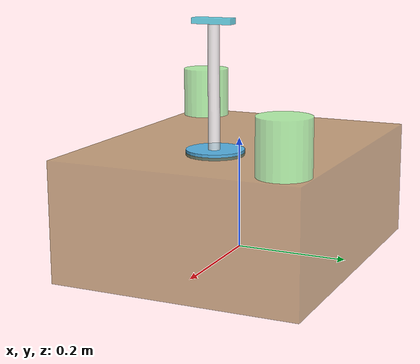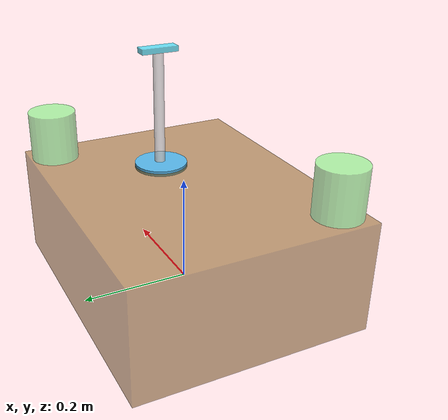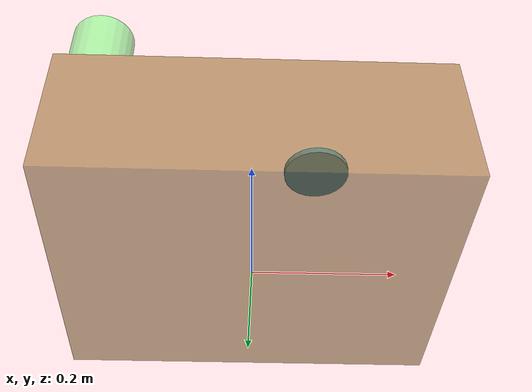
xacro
<!-- 组合惯性矩阵文件、小车、摄像头、雷达和运动控制 -->
<robot name="cartographer_backpack_2d" xmlns:xacro="http://wiki.ros.org/xacro">
    <xacro:include filename="xacro/car.xacro" />
    <xacro:include filename="xacro/laser.xacro" />
    <xacro:include filename="xacro/camera.xacro" />
</robot>

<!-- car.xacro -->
<robot name="my_base" xmlns:xacro="http://www.ros.org/wiki/xacro">
    <!-- PI 值设置 -->
    <xacro:property name="PI" value="3.1415926" />
    <!-- 宏:黑色设置 -->
    <material name="black">
        <color rgba="0.0 0.0 0.0 1.0" />
    </material>
    <!-- 底盘属性 -->
    <xacro:property name="base_link_length" value="0.55" /> <!-- base_link 长 -->
    <xacro:property name="base_link_width" value="0.44" /> <!-- base_link 宽 -->
    <xacro:property name="base_link_height" value="0.21" /> <!-- base_link 高 -->
    <xacro:property name="earth_space" value="0.09" /> <!-- 底盘离地间距 -->

    <link name="base_link">
        <visual>
            <geometry>
                <box size="${base_link_length} ${base_link_width} ${base_link_height}" />
            </geometry>
            <origin xyz="0 0 ${earth_space}" rpy="0 0 0" />
            <material name="yellow">
                <color rgba="0.5 0.3 0.0 0.5" />
            </material>
        </visual>
    </link>

    <!-- direction link 一个红色的圆盘指示小车车头的方向 -->
    <link name="dir_link">
        <visual>
            <geometry>
                <cylinder length="0.01" radius="0.05" />
            </geometry>
        </visual>
    </link>

    <joint name="dir2base_link" type="fixed">
        <parent link="base_link" />
        <child link="dir_link" />
        <origin xyz="0.1 0 ${earth_space + base_link_height / 2 }" />
    </joint>

    <!-- 驱动轮 -->
    <xacro:property name="wheel_radius" value="0.085" /> <!-- 半径 -->
    <xacro:property name="wheel_length" value="0.045" /> <!-- 宽度 -->

    <!-- 驱动轮宏实现 -->
    <xacro:macro name="add_wheels" params="name flag">
        <link name="${name}_wheel">
            <visual>
                <geometry>
                    <cylinder radius="${wheel_radius}" length="${wheel_length}" />
                </geometry>
                <origin xyz="0.0 0.0 0.0" rpy="${PI / 2} 0.0 0.0" />
                <material name="black" />
            </visual>
        </link>

        <joint name="${name}_wheel2base_link" type="fixed">
            <parent link="base_link" />
            <child link="${name}_wheel" />
            <origin xyz="0 ${flag * (base_link_width/2+wheel_length/2)} ${-(earth_space + base_link_height / 2 - wheel_radius) }" />
            <axis xyz="0 1 0" />
        </joint>
    </xacro:macro>

    <!-- 支撑轮 -->
    <xacro:property name="support_wheel_radius" value="0.03" /> <!-- 支撑轮半径 -->

    <!-- 支撑轮宏 -->
    <xacro:macro name="add_support_wheel" params="name flag1 flag2">
        <link name="${name}_wheel">
            <visual>
                <geometry>
                    <sphere radius="${support_wheel_radius}" />
                </geometry>
                <origin xyz="0 0 0" rpy="0 0 0" />
                <material name="black" />
            </visual>
        </link>

        <joint name="${name}_wheel2base_link" type="continuous">
            <parent link="base_link" />
            <child link="${name}_wheel" />
            <origin xyz="${flag1 * (base_link_length/2 - support_wheel_radius)} ${flag2 * (base_link_width/2 - support_wheel_radius)} ${-(base_link_height / 2 + earth_space-support_wheel_radius)}" />
            <axis xyz="1 1 1" />
        </joint>
    </xacro:macro>

</robot>

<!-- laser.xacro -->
<robot name="my_laser" xmlns:xacro="http://wiki.ros.org/xacro">

    <material name="orange">
        <color rgba="1.0 0.5 0.2 1" />
    </material>
    <material name="green">
        <color rgba="0.5 1.0 0.5 0.6" />
    </material>

    <!-- IMU -->
    <link name="imu_link">
        <visual>
        <origin xyz="0 0 0" />
        <geometry>
            <!--box size="0.034 0.034 0.016" /-->
            <box size="0.0 0.0 0.0" />
        </geometry>
        <material name="green" />
        </visual>
    </link>

    <joint name="imu_link_joint" type="fixed">
        <parent link="base_link" />
        <child link="imu_link" />
        <origin xyz="0 0 0"/>
    </joint>

    <!-- 雷达 -->
    <xacro:property name="laser_length" value="0.0935" /> <!-- 高度 -->
    <xacro:property name="laser_radius" value="0.04447" /> <!-- 半径 -->
    <xacro:property name="laser_x" value="0.445" /> <!-- x轴距离 -->
    <xacro:property name="laser_y" value="0.345" /> <!-- y轴距离 -->

    <xacro:macro name="add_lasers" params="name flag">
        <link name="laser_wj${name}">
            <visual>
            <origin xyz="0 0 0" />
            <geometry>
                <cylinder length="${laser_length}" radius="${laser_radius}" />
            </geometry>
            <material name="green" />
            </visual>
        </link>

        <joint name="laser${name}2base_link" type="fixed">
            <parent link="base_link" />
            <child link="laser_wj${name}" />
            <!-- y轴配准的话，2号laser y轴要多0.05 z=底盘高度/2+雷达高度/2 -->
            <origin rpy="0 0 ${-(flag-1)*PI/2}" xyz="${flag*laser_x/2} ${flag*laser_y/2} ${base_link_height/2+earth_space+laser_length/2}" />
        </joint>
    </xacro:macro>

    <xacro:add_lasers name="_1" flag="-1" />
    <xacro:add_lasers name="_2" flag="1" />

</robot>

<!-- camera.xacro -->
<robot name="my_laser" xmlns:xacro="http://wiki.ros.org/xacro">

    <!-- 相机支架属性 -->
    <xacro:property name="support_length" value="0.22" /> <!-- 支架长度 -->
    <xacro:property name="support_radius" value="0.01" /> <!-- 支架半径 -->
    <xacro:property name="support_x" value="0.105" /> <!-- 支架安装的x坐标 -->
    <xacro:property name="support_y" value="0.0" /> <!-- 支架安装的y坐标 -->
    <xacro:property name="support_z" value="${base_link_height/2 + earth_space + support_length/2}" /> <!-- 支架安装的z坐标:底盘高度 / 2 + 支架高度 / 2  -->

    <link name="support">
        <visual>
            <geometry>
                <cylinder radius="${support_radius}" length="${support_length}" />
            </geometry>
            <origin xyz="0.0 0.0 0.0" rpy="0.0 0.0 0.0" />
            <material name="white">
                <color rgba="1 1 1 0.8" />
            </material>
        </visual>
    </link>

    <joint name="support2base_link" type="fixed">
        <parent link="base_link" />
        <child link="support" />
        <origin xyz="${support_x} ${support_y} ${support_z}" />
    </joint>

    <xacro:property name="camera_length" value="0.023" />
    <xacro:property name="camera_width" value="0.07" />
    <xacro:property name="camera_height" value="0.01" />
    <xacro:property name="camera_x" value="0.0" />
    <xacro:property name="camera_y" value="0.0" />
    <xacro:property name="camera_z" value="${support_length/2}" />

    <!-- 相机属性 -->
    <link name="camera">
        <visual>
            <geometry>
                <box size="${camera_length} ${camera_width} ${camera_height}" />
            </geometry>
            <origin xyz="0 0 0" rpy="0 0 0" />
            <material name="blue">
                <color rgba="0.3 0.9 1.0 0.8" />
            </material>
        </visual>
    </link>

    <joint name="camera2support" type="fixed">
        <parent link="support" />
        <child link="camera" />
        <origin xyz="${camera_x} ${camera_y} ${camera_z}" />
    </joint>

</robot>
